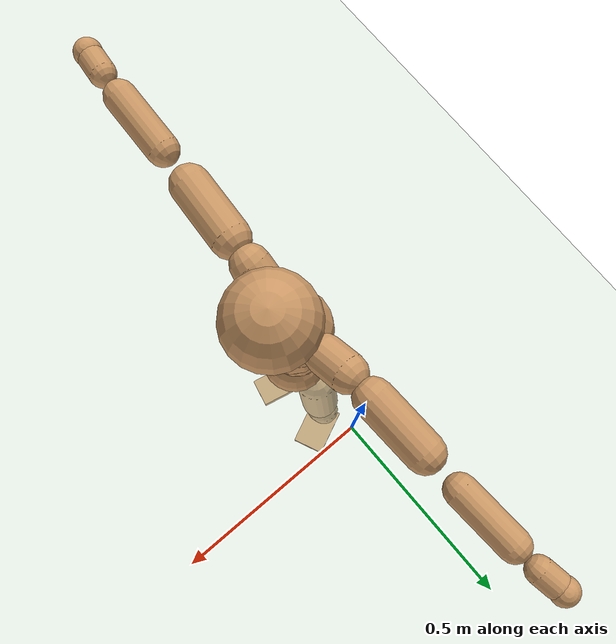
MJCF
<mujoco model="humanoid">
  <compiler coordinate="local" angle="radian"/>
  <default>
    <joint damping="0.0" armature="0.01" stiffness="0.0" limited="true"/>
    <geom conaffinity="1" condim="3" contype="7" margin="0.001" rgba="0.8 0.6 .4 1"/>
  </default>
  <asset>
    <texture type="skybox" builtin="gradient" rgb1=".4 .5 .6" rgb2="0 0 0" width="100" height="100"/>
    <texture builtin="flat" height="1278" mark="cross" markrgb="1 1 1" name="texgeom" random="0.01" rgb1="0.8 0.6 0.4" rgb2="0.8 0.6 0.4" type="cube" width="127"/>
    <texture builtin="checker" height="100" name="texplane" rgb1="0 0 0" rgb2="0.8 0.8 0.8" type="2d" width="100"/>
    <material name="MatPlane" reflectance="0.5" shininess="1" specular="1" texrepeat="60 60" texture="texplane"/>
    <material name="geom" texture="texgeom" texuniform="true"/>
  </asset>
  <worldbody>
    <light cutoff="100" diffuse="1 1 1" dir="-0 0 -1.3" directional="true" exponent="1" pos="0 0 1.3" specular=".1 .1 .1"/>
    <geom conaffinity="1" condim="3" name="floor" pos="0 0 0" rgba="0.8 0.9 0.8 1" size="100 100 .2" type="plane" material="MatPlane"/>
    <body name="Pelvis" pos="-0.0006 -0.2163 0.0075">
      <freejoint name="Pelvis"/>
      <geom type="sphere" contype="1" conaffinity="1" density="500" size="0.0796" pos="0.0000 0.0000 0.0000" name="Pelvis"/>
      <body name="L_Hip" pos="-0.0232 0.0485 -0.0751">
        <joint name="L_Hip_x" type="hinge" pos="0 0 0" axis="1 0 0" stiffness="800" damping="80" armature="0.02" range="-180.0000 180.0000"/>
        <joint name="L_Hip_y" type="hinge" pos="0 0 0" axis="0 1 0" stiffness="800" damping="80" armature="0.02" range="-180.0000 180.0000"/>
        <joint name="L_Hip_z" type="hinge" pos="0 0 0" axis="0 0 1" stiffness="800" damping="80" armature="0.02" range="-180.0000 180.0000"/>
        <geom type="capsule" contype="1" conaffinity="1" density="500" fromto="0.0019 0.0090 -0.0752 0.0077 0.0362 -0.3006" size="0.0516" name="L_Hip"/>
        <body name="L_Knee" pos="0.0096 0.0452 -0.3758">
          <joint name="L_Knee_x" type="hinge" pos="0 0 0" axis="1 0 0" stiffness="800" damping="80" armature="0.02" range="-180.0000 180.0000"/>
          <joint name="L_Knee_y" type="hinge" pos="0 0 0" axis="0 1 0" stiffness="800" damping="80" armature="0.02" range="-180.0000 180.0000"/>
          <joint name="L_Knee_z" type="hinge" pos="0 0 0" axis="0 0 1" stiffness="800" damping="80" armature="0.02" range="-180.0000 180.0000"/>
          <geom type="capsule" contype="1" conaffinity="1" density="500" fromto="-0.0062 -0.0021 -0.0772 -0.0247 -0.0082 -0.3087" size="0.0467" name="L_Knee"/>
          <body name="L_Ankle" pos="-0.0308 -0.0103 -0.3858">
            <joint name="L_Ankle_x" type="hinge" pos="0 0 0" axis="1 0 0" stiffness="800" damping="80" armature="0.02" range="-180.0000 180.0000"/>
            <joint name="L_Ankle_y" type="hinge" pos="0 0 0" axis="0 1 0" stiffness="800" damping="80" armature="0.02" range="-180.0000 180.0000"/>
            <joint name="L_Ankle_z" type="hinge" pos="0 0 0" axis="0 0 1" stiffness="800" damping="80" armature="0.02" range="-180.0000 180.0000"/>
            <geom type="box" contype="1" conaffinity="1" density="500" pos="0.0543 0.0242 -0.0279" size="0.0755 0.0513 0.0182" quat="0.9780 0.0000 0.0000 0.2084" name="L_Ankle"/>
            <body name="L_Toe" pos="0.1085 0.0484 -0.0559">
              <joint name="L_Toe_x" type="hinge" pos="0 0 0" axis="1 0 0" stiffness="500" damping="50" armature="0.02" range="-180.0000 180.0000"/>
              <joint name="L_Toe_y" type="hinge" pos="0 0 0" axis="0 1 0" stiffness="500" damping="50" armature="0.02" range="-180.0000 180.0000"/>
              <joint name="L_Toe_z" type="hinge" pos="0 0 0" axis="0 0 1" stiffness="500" damping="50" armature="0.02" range="-180.0000 180.0000"/>
              <geom type="box" contype="1" conaffinity="1" density="500" pos="0.0000 0.0000 0.0304" size="0.001 0.0024 0.001" quat="0.9772 0.0000 0.0000 0.2125" name="L_Toe"/>
            </body>
          </body>
        </body>
      </body>
      <body name="R_Hip" pos="-0.0202 -0.0506 -0.0831">
        <joint name="R_Hip_x" type="hinge" pos="0 0 0" axis="1 0 0" stiffness="800" damping="80" armature="0.02" range="-180.0000 180.0000"/>
        <joint name="R_Hip_y" type="hinge" pos="0 0 0" axis="0 1 0" stiffness="800" damping="80" armature="0.02" range="-180.0000 180.0000"/>
        <joint name="R_Hip_z" type="hinge" pos="0 0 0" axis="0 0 1" stiffness="800" damping="80" armature="0.02" range="-180.0000 180.0000"/>
        <geom type="capsule" contype="1" conaffinity="1" density="500" fromto="-0.0004 -0.0090 -0.0732 -0.0015 -0.0360 -0.2929" size="0.051" name="R_Hip"/>
        <body name="R_Knee" pos="-0.0019 -0.045 -0.3661">
          <joint name="R_Knee_x" type="hinge" pos="0 0 0" axis="1 0 0" stiffness="800" damping="80" armature="0.02" range="-180.0000 180.0000"/>
          <joint name="R_Knee_y" type="hinge" pos="0 0 0" axis="0 1 0" stiffness="800" damping="80" armature="0.02" range="-180.0000 180.0000"/>
          <joint name="R_Knee_z" type="hinge" pos="0 0 0" axis="0 0 1" stiffness="800" damping="80" armature="0.02" range="-180.0000 180.0000"/>
          <geom type="capsule" contype="1" conaffinity="1" density="500" fromto="-0.0057 0.0030 -0.0757 -0.0229 0.0122 -0.3029" size="0.0478" name="R_Knee"/>
          <body name="R_Ankle" pos="-0.0287 0.0152 -0.3786">
            <joint name="R_Ankle_x" type="hinge" pos="0 0 0" axis="1 0 0" stiffness="800" damping="80" armature="0.02" range="-180.0000 180.0000"/>
            <joint name="R_Ankle_y" type="hinge" pos="0 0 0" axis="0 1 0" stiffness="800" damping="80" armature="0.02" range="-180.0000 180.0000"/>
            <joint name="R_Ankle_z" type="hinge" pos="0 0 0" axis="0 0 1" stiffness="800" damping="80" armature="0.02" range="-180.0000 180.0000"/>
            <geom type="box" contype="1" conaffinity="1" density="500" pos="0.0587 -0.0131 -0.0295" size="0.083 0.0459 0.0199" quat="0.9939 0.0000 0.0000 -0.1098" name="R_Ankle"/>
            <body name="R_Toe" pos="0.1173 -0.0262 -0.0589">
              <joint name="R_Toe_x" type="hinge" pos="0 0 0" axis="1 0 0" stiffness="500" damping="50" armature="0.02" range="-180.0000 180.0000"/>
              <joint name="R_Toe_y" type="hinge" pos="0 0 0" axis="0 1 0" stiffness="500" damping="50" armature="0.02" range="-180.0000 180.0000"/>
              <joint name="R_Toe_z" type="hinge" pos="0 0 0" axis="0 0 1" stiffness="500" damping="50" armature="0.02" range="-180.0000 180.0000"/>
              <geom type="box" contype="1" conaffinity="1" density="500" pos="0.0000 0.0000 0.0319" size="0.0009 0.0022 0.0011" quat="0.9950 0.0000 0.0000 -0.1001" name="R_Toe"/>
            </body>
          </body>
        </body>
      </body>
      <body name="Torso" pos="-0.0211 0.004 0.1103">
        <joint name="Torso_x" type="hinge" pos="0 0 0" axis="1 0 0" stiffness="1000" damping="100" armature="0.02" range="-180.0000 180.0000"/>
        <joint name="Torso_y" type="hinge" pos="0 0 0" axis="0 1 0" stiffness="1000" damping="100" armature="0.02" range="-180.0000 180.0000"/>
        <joint name="Torso_z" type="hinge" pos="0 0 0" axis="0 0 1" stiffness="1000" damping="100" armature="0.02" range="-180.0000 180.0000"/>
        <geom type="capsule" contype="1" conaffinity="1" density="500" fromto="0.0179 0.0026 0.0775 0.0119 0.0017 0.0517" size="0.0659" name="Torso"/>
        <body name="Spine" pos="0.0299 0.0043 0.1292">
          <joint name="Spine_x" type="hinge" pos="0 0 0" axis="1 0 0" stiffness="1000" damping="100" armature="0.02" range="-180.0000 180.0000"/>
          <joint name="Spine_y" type="hinge" pos="0 0 0" axis="0 1 0" stiffness="1000" damping="100" armature="0.02" range="-180.0000 180.0000"/>
          <joint name="Spine_z" type="hinge" pos="0 0 0" axis="0 0 1" stiffness="1000" damping="100" armature="0.02" range="-180.0000 180.0000"/>
          <geom type="capsule" contype="1" conaffinity="1" density="500" fromto="-0.0002 -0.0012 0.0308 -0.0001 -0.0008 0.0205" size="0.0654" name="Spine"/>
          <body name="Chest" pos="-0.0003 -0.002 0.0513">
            <joint name="Chest_x" type="hinge" pos="0 0 0" axis="1 0 0" stiffness="1000" damping="100" armature="0.02" range="-180.0000 180.0000"/>
            <joint name="Chest_y" type="hinge" pos="0 0 0" axis="0 1 0" stiffness="1000" damping="100" armature="0.02" range="-180.0000 180.0000"/>
            <joint name="Chest_z" type="hinge" pos="0 0 0" axis="0 0 1" stiffness="1000" damping="100" armature="0.02" range="-180.0000 180.0000"/>
            <geom type="capsule" contype="1" conaffinity="1" density="500" fromto="-0.0121 -0.0053 0.0771 -0.0081 -0.0035 0.0514" size="0.0856" name="Chest"/>
            <body name="Neck" pos="-0.0189 -0.0128 0.1872">
              <joint name="Neck_x" type="hinge" pos="0 0 0" axis="1 0 0" stiffness="500" damping="50" armature="0.02" range="-180.0000 180.0000"/>
              <joint name="Neck_y" type="hinge" pos="0 0 0" axis="0 1 0" stiffness="500" damping="50" armature="0.02" range="-180.0000 180.0000"/>
              <joint name="Neck_z" type="hinge" pos="0 0 0" axis="0 0 1" stiffness="500" damping="50" armature="0.02" range="-180.0000 180.0000"/>
              <geom type="capsule" contype="1" conaffinity="1" density="500" fromto="0.0107 0.0018 0.0192 0.0428 0.0071 0.0767" size="0.0402" name="Neck"/>
              <body name="Head" pos="0.0535 0.0089 0.0959">
                <joint name="Head_x" type="hinge" pos="0 0 0" axis="1 0 0" stiffness="500" damping="50" armature="0.02" range="-180.0000 180.0000"/>
                <joint name="Head_y" type="hinge" pos="0 0 0" axis="0 1 0" stiffness="500" damping="50" armature="0.02" range="-180.0000 180.0000"/>
                <joint name="Head_z" type="hinge" pos="0 0 0" axis="0 0 1" stiffness="500" damping="50" armature="0.02" range="-180.0000 180.0000"/>
                <geom type="sphere" contype="1" conaffinity="1" density="500" size="0.0971" pos="0.0000 0.0000 0.0000" name="Head"/>
              </body>
            </body>
            <body name="L_Thorax" pos="-0.0199 0.059 0.0987">
              <joint name="L_Thorax_x" type="hinge" pos="0 0 0" axis="1 0 0" stiffness="500" damping="50" armature="0.02" range="-180.0000 180.0000"/>
              <joint name="L_Thorax_y" type="hinge" pos="0 0 0" axis="0 1 0" stiffness="500" damping="50" armature="0.02" range="-180.0000 180.0000"/>
              <joint name="L_Thorax_z" type="hinge" pos="0 0 0" axis="0 0 1" stiffness="500" damping="50" armature="0.02" range="-180.0000 180.0000"/>
              <geom type="capsule" contype="1" conaffinity="1" density="500" fromto="-0.0025 0.0206 0.0080 -0.0099 0.0822 0.0321" size="0.0427" name="L_Thorax"/>
              <body name="L_Shoulder" pos="-0.0124 0.1028 0.0402">
                <joint name="L_Shoulder_x" type="hinge" pos="0 0 0" axis="1 0 0" stiffness="500" damping="50" armature="0.02" range="-720.0000 720.0000"/>
                <joint name="L_Shoulder_y" type="hinge" pos="0 0 0" axis="0 1 0" stiffness="500" damping="50" armature="0.02" range="-720.0000 720.0000"/>
                <joint name="L_Shoulder_z" type="hinge" pos="0 0 0" axis="0 0 1" stiffness="500" damping="50" armature="0.02" range="-720.0000 720.0000"/>
                <geom type="capsule" contype="1" conaffinity="1" density="500" fromto="-0.0023 0.0476 -0.0026 -0.0091 0.1905 -0.0104" size="0.0429" name="L_Shoulder"/>
                <body name="L_Elbow" pos="-0.0113 0.2382 -0.0131">
                  <joint name="L_Elbow_x" type="hinge" pos="0 0 0" axis="1 0 0" stiffness="500" damping="50" armature="0.02" range="-720.0000 720.0000"/>
                  <joint name="L_Elbow_y" type="hinge" pos="0 0 0" axis="0 1 0" stiffness="500" damping="50" armature="0.02" range="-720.0000 720.0000"/>
                  <joint name="L_Elbow_z" type="hinge" pos="0 0 0" axis="0 0 1" stiffness="500" damping="50" armature="0.02" range="-720.0000 720.0000"/>
                  <geom type="capsule" contype="1" conaffinity="1" density="500" fromto="-0.0026 0.0467 0.0014 -0.0103 0.1867 0.0057" size="0.0346" name="L_Elbow"/>
                  <body name="L_Wrist" pos="-0.0128 0.2334 0.0071">
                    <joint name="L_Wrist_x" type="hinge" pos="0 0 0" axis="1 0 0" stiffness="300" damping="30" armature="0.02" range="-180.0000 180.0000"/>
                    <joint name="L_Wrist_y" type="hinge" pos="0 0 0" axis="0 1 0" stiffness="300" damping="30" armature="0.02" range="-180.0000 180.0000"/>
                    <joint name="L_Wrist_z" type="hinge" pos="0 0 0" axis="0 0 1" stiffness="300" damping="30" armature="0.02" range="-180.0000 180.0000"/>
                    <geom type="capsule" contype="1" conaffinity="1" density="500" fromto="-0.0027 0.0148 -0.0018 -0.0107 0.0593 -0.0072" size="0.0291" name="L_Wrist"/>
                    <body name="L_Hand" pos="-0.0134 0.0741 -0.0089">
                      <joint name="L_Hand_x" type="hinge" pos="0 0 0" axis="1 0 0" stiffness="300" damping="30" armature="0.02" range="-180.0000 180.0000"/>
                      <joint name="L_Hand_y" type="hinge" pos="0 0 0" axis="0 1 0" stiffness="300" damping="30" armature="0.02" range="-180.0000 180.0000"/>
                      <joint name="L_Hand_z" type="hinge" pos="0 0 0" axis="0 0 1" stiffness="300" damping="30" armature="0.02" range="-180.0000 180.0000"/>
                      <geom type="sphere" contype="1" conaffinity="1" density="500" size="0.0305" pos="0.0000 0.0000 0.0000" name="L_Hand"/>
                    </body>
                  </body>
                </body>
              </body>
            </body>
            <body name="R_Thorax" pos="-0.0216 -0.0726 0.0995">
              <joint name="R_Thorax_x" type="hinge" pos="0 0 0" axis="1 0 0" stiffness="500" damping="50" armature="0.02" range="-180.0000 180.0000"/>
              <joint name="R_Thorax_y" type="hinge" pos="0 0 0" axis="0 1 0" stiffness="500" damping="50" armature="0.02" range="-180.0000 180.0000"/>
              <joint name="R_Thorax_z" type="hinge" pos="0 0 0" axis="0 0 1" stiffness="500" damping="50" armature="0.02" range="-180.0000 180.0000"/>
              <geom type="capsule" contype="1" conaffinity="1" density="500" fromto="-0.0007 -0.0192 0.0081 -0.0027 -0.0769 0.0323" size="0.0438" name="R_Thorax"/>
              <body name="R_Shoulder" pos="-0.0034 -0.0961 0.0404">
                <joint name="R_Shoulder_x" type="hinge" pos="0 0 0" axis="1 0 0" stiffness="500" damping="50" armature="0.02" range="-720.0000 720.0000"/>
                <joint name="R_Shoulder_y" type="hinge" pos="0 0 0" axis="0 1 0" stiffness="500" damping="50" armature="0.02" range="-720.0000 720.0000"/>
                <joint name="R_Shoulder_z" type="hinge" pos="0 0 0" axis="0 0 1" stiffness="500" damping="50" armature="0.02" range="-720.0000 720.0000"/>
                <geom type="capsule" contype="1" conaffinity="1" density="500" fromto="-0.0034 -0.0475 -0.0030 -0.0136 -0.1901 -0.0119" size="0.0448" name="R_Shoulder"/>
                <body name="R_Elbow" pos="-0.017 -0.2376 -0.0149">
                  <joint name="R_Elbow_x" type="hinge" pos="0 0 0" axis="1 0 0" stiffness="500" damping="50" armature="0.02" range="-720.0000 720.0000"/>
                  <joint name="R_Elbow_y" type="hinge" pos="0 0 0" axis="0 1 0" stiffness="500" damping="50" armature="0.02" range="-720.0000 720.0000"/>
                  <joint name="R_Elbow_z" type="hinge" pos="0 0 0" axis="0 0 1" stiffness="500" damping="50" armature="0.02" range="-720.0000 720.0000"/>
                  <geom type="capsule" contype="1" conaffinity="1" density="500" fromto="-0.0017 -0.0489 0.0021 -0.0066 -0.1957 0.0084" size="0.0361" name="R_Elbow"/>
                  <body name="R_Wrist" pos="-0.0083 -0.2446 0.0105">
                    <joint name="R_Wrist_x" type="hinge" pos="0 0 0" axis="1 0 0" stiffness="300" damping="30" armature="0.02" range="-180.0000 180.0000"/>
                    <joint name="R_Wrist_y" type="hinge" pos="0 0 0" axis="0 1 0" stiffness="300" damping="30" armature="0.02" range="-180.0000 180.0000"/>
                    <joint name="R_Wrist_z" type="hinge" pos="0 0 0" axis="0 0 1" stiffness="300" damping="30" armature="0.02" range="-180.0000 180.0000"/>
                    <geom type="capsule" contype="1" conaffinity="1" density="500" fromto="-0.0018 -0.0154 -0.0014 -0.0071 -0.0617 -0.0057" size="0.0301" name="R_Wrist"/>
                    <body name="R_Hand" pos="-0.0089 -0.0772 -0.0072">
                      <joint name="R_Hand_x" type="hinge" pos="0 0 0" axis="1 0 0" stiffness="300" damping="30" armature="0.02" range="-180.0000 180.0000"/>
                      <joint name="R_Hand_y" type="hinge" pos="0 0 0" axis="0 1 0" stiffness="300" damping="30" armature="0.02" range="-180.0000 180.0000"/>
                      <joint name="R_Hand_z" type="hinge" pos="0 0 0" axis="0 0 1" stiffness="300" damping="30" armature="0.02" range="-180.0000 180.0000"/>
                      <geom type="sphere" contype="1" conaffinity="1" density="500" size="0.0314" pos="0.0000 0.0000 0.0000" name="R_Hand"/>
                    </body>
                  </body>
                </body>
              </body>
            </body>
          </body>
        </body>
      </body>
    </body>
  </worldbody>
  <actuator>
    <motor name="L_Hip_x" joint="L_Hip_x" gear="500"/>
    <motor name="L_Hip_y" joint="L_Hip_y" gear="500"/>
    <motor name="L_Hip_z" joint="L_Hip_z" gear="500"/>
    <motor name="L_Knee_x" joint="L_Knee_x" gear="500"/>
    <motor name="L_Knee_y" joint="L_Knee_y" gear="500"/>
    <motor name="L_Knee_z" joint="L_Knee_z" gear="500"/>
    <motor name="L_Ankle_x" joint="L_Ankle_x" gear="500"/>
    <motor name="L_Ankle_y" joint="L_Ankle_y" gear="500"/>
    <motor name="L_Ankle_z" joint="L_Ankle_z" gear="500"/>
    <motor name="L_Toe_x" joint="L_Toe_x" gear="500"/>
    <motor name="L_Toe_y" joint="L_Toe_y" gear="500"/>
    <motor name="L_Toe_z" joint="L_Toe_z" gear="500"/>
    <motor name="R_Hip_x" joint="R_Hip_x" gear="500"/>
    <motor name="R_Hip_y" joint="R_Hip_y" gear="500"/>
    <motor name="R_Hip_z" joint="R_Hip_z" gear="500"/>
    <motor name="R_Knee_x" joint="R_Knee_x" gear="500"/>
    <motor name="R_Knee_y" joint="R_Knee_y" gear="500"/>
    <motor name="R_Knee_z" joint="R_Knee_z" gear="500"/>
    <motor name="R_Ankle_x" joint="R_Ankle_x" gear="500"/>
    <motor name="R_Ankle_y" joint="R_Ankle_y" gear="500"/>
    <motor name="R_Ankle_z" joint="R_Ankle_z" gear="500"/>
    <motor name="R_Toe_x" joint="R_Toe_x" gear="500"/>
    <motor name="R_Toe_y" joint="R_Toe_y" gear="500"/>
    <motor name="R_Toe_z" joint="R_Toe_z" gear="500"/>
    <motor name="Torso_x" joint="Torso_x" gear="500"/>
    <motor name="Torso_y" joint="Torso_y" gear="500"/>
    <motor name="Torso_z" joint="Torso_z" gear="500"/>
    <motor name="Spine_x" joint="Spine_x" gear="500"/>
    <motor name="Spine_y" joint="Spine_y" gear="500"/>
    <motor name="Spine_z" joint="Spine_z" gear="500"/>
    <motor name="Chest_x" joint="Chest_x" gear="500"/>
    <motor name="Chest_y" joint="Chest_y" gear="500"/>
    <motor name="Chest_z" joint="Chest_z" gear="500"/>
    <motor name="Neck_x" joint="Neck_x" gear="500"/>
    <motor name="Neck_y" joint="Neck_y" gear="500"/>
    <motor name="Neck_z" joint="Neck_z" gear="500"/>
    <motor name="Head_x" joint="Head_x" gear="500"/>
    <motor name="Head_y" joint="Head_y" gear="500"/>
    <motor name="Head_z" joint="Head_z" gear="500"/>
    <motor name="L_Thorax_x" joint="L_Thorax_x" gear="500"/>
    <motor name="L_Thorax_y" joint="L_Thorax_y" gear="500"/>
    <motor name="L_Thorax_z" joint="L_Thorax_z" gear="500"/>
    <motor name="L_Shoulder_x" joint="L_Shoulder_x" gear="500"/>
    <motor name="L_Shoulder_y" joint="L_Shoulder_y" gear="500"/>
    <motor name="L_Shoulder_z" joint="L_Shoulder_z" gear="500"/>
    <motor name="L_Elbow_x" joint="L_Elbow_x" gear="500"/>
    <motor name="L_Elbow_y" joint="L_Elbow_y" gear="500"/>
    <motor name="L_Elbow_z" joint="L_Elbow_z" gear="500"/>
    <motor name="L_Wrist_x" joint="L_Wrist_x" gear="500"/>
    <motor name="L_Wrist_y" joint="L_Wrist_y" gear="500"/>
    <motor name="L_Wrist_z" joint="L_Wrist_z" gear="500"/>
    <motor name="L_Hand_x" joint="L_Hand_x" gear="500"/>
    <motor name="L_Hand_y" joint="L_Hand_y" gear="500"/>
    <motor name="L_Hand_z" joint="L_Hand_z" gear="500"/>
    <motor name="R_Thorax_x" joint="R_Thorax_x" gear="500"/>
    <motor name="R_Thorax_y" joint="R_Thorax_y" gear="500"/>
    <motor name="R_Thorax_z" joint="R_Thorax_z" gear="500"/>
    <motor name="R_Shoulder_x" joint="R_Shoulder_x" gear="500"/>
    <motor name="R_Shoulder_y" joint="R_Shoulder_y" gear="500"/>
    <motor name="R_Shoulder_z" joint="R_Shoulder_z" gear="500"/>
    <motor name="R_Elbow_x" joint="R_Elbow_x" gear="500"/>
    <motor name="R_Elbow_y" joint="R_Elbow_y" gear="500"/>
    <motor name="R_Elbow_z" joint="R_Elbow_z" gear="500"/>
    <motor name="R_Wrist_x" joint="R_Wrist_x" gear="500"/>
    <motor name="R_Wrist_y" joint="R_Wrist_y" gear="500"/>
    <motor name="R_Wrist_z" joint="R_Wrist_z" gear="500"/>
    <motor name="R_Hand_x" joint="R_Hand_x" gear="500"/>
    <motor name="R_Hand_y" joint="R_Hand_y" gear="500"/>
    <motor name="R_Hand_z" joint="R_Hand_z" gear="500"/>
  </actuator>
  <contact>
    <exclude body1="Torso" body2="Chest"/>
    <exclude body1="Head" body2="Chest"/>
    <exclude body1="R_Knee" body2="R_Toe"/>
    <exclude body1="R_Knee" body2="L_Ankle"/>
    <exclude body1="R_Knee" body2="L_Toe"/>
    <exclude body1="L_Knee" body2="L_Toe"/>
    <exclude body1="L_Knee" body2="R_Ankle"/>
    <exclude body1="L_Knee" body2="R_Toe"/>
    <exclude body1="L_Shoulder" body2="Chest"/>
    <exclude body1="R_Shoulder" body2="Chest"/>
  </contact>
  <sensor/>
  <size njmax="700" nconmax="700"/>
</mujoco>
